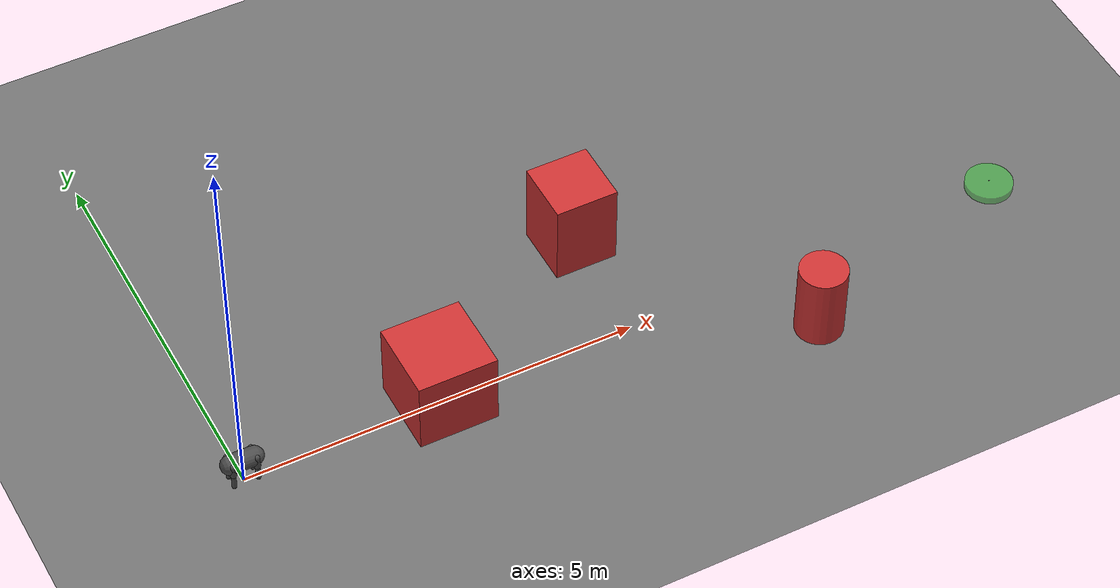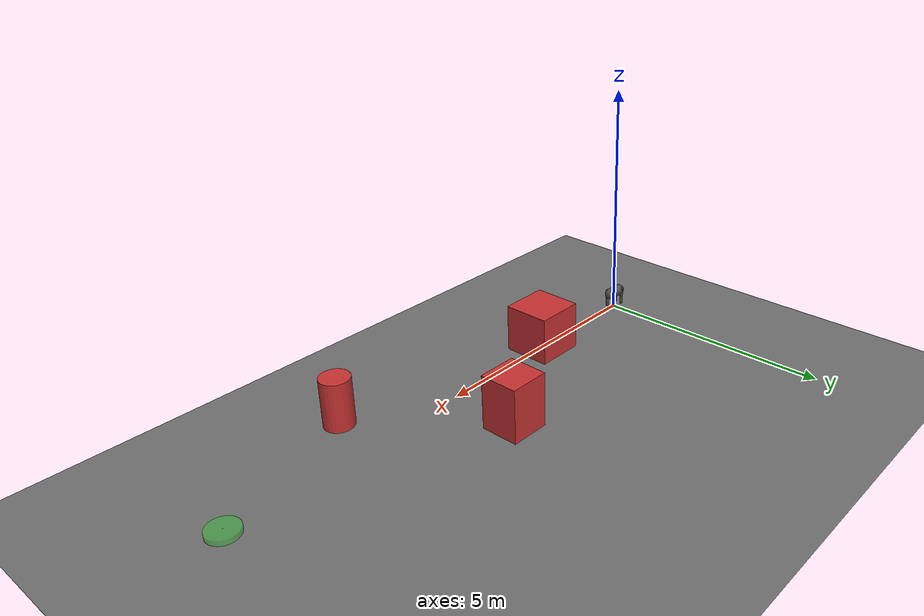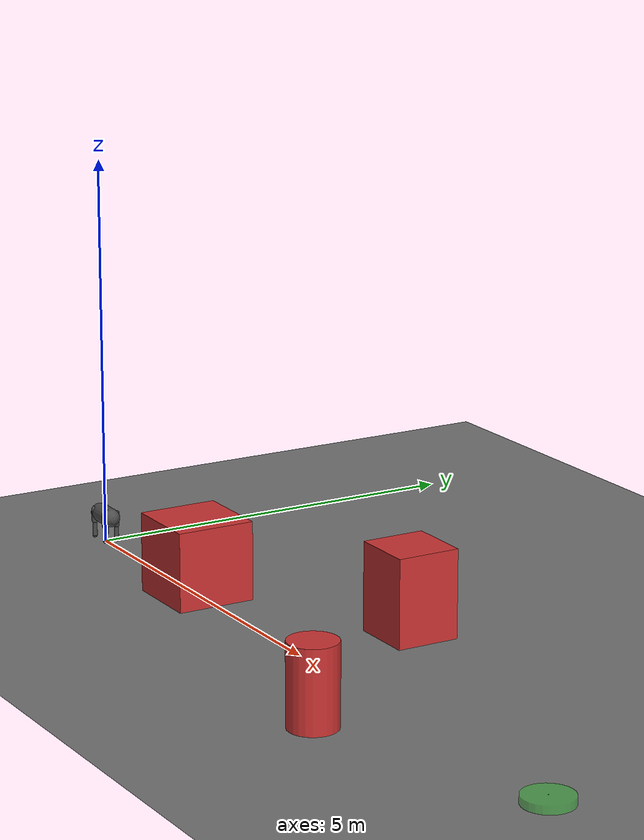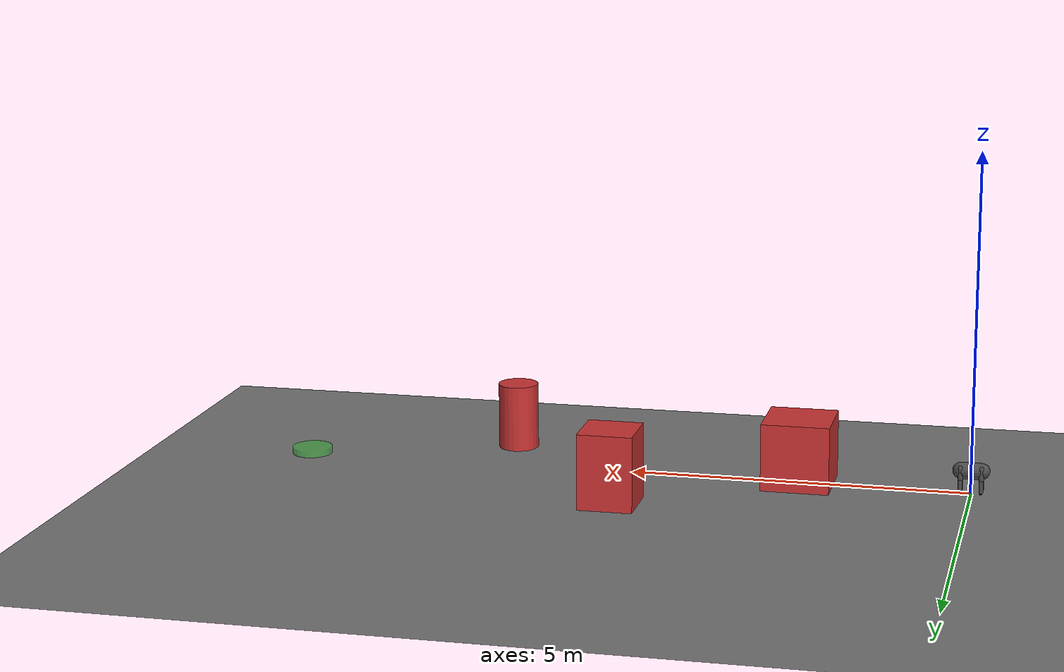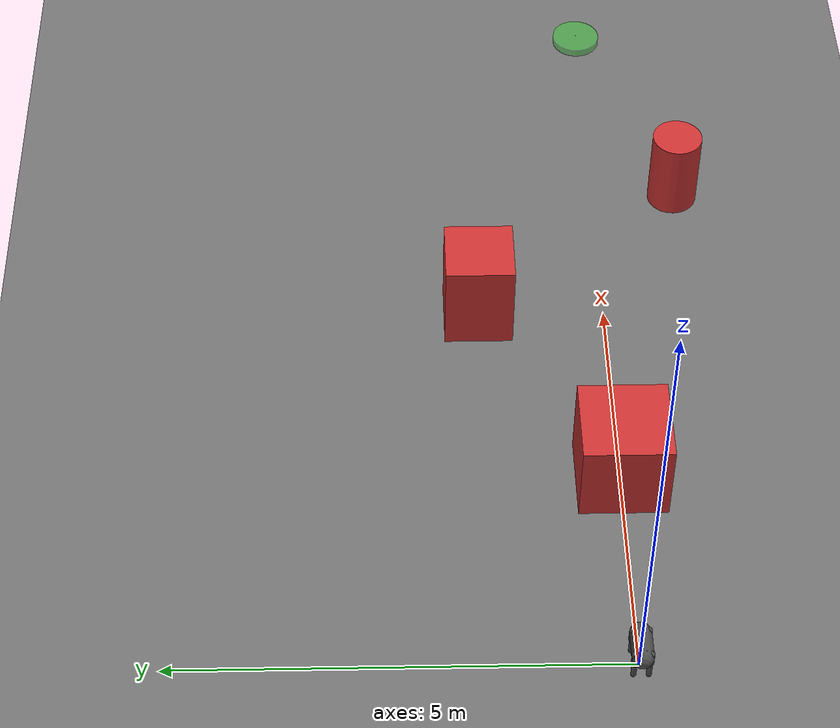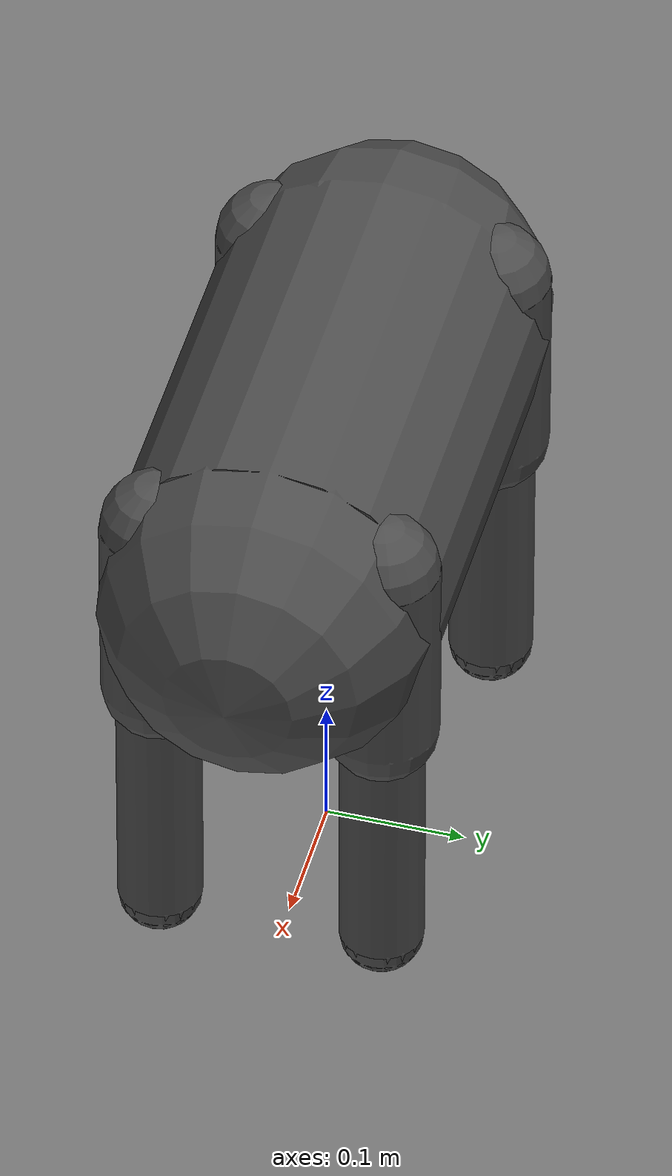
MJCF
<!--
  Deep Robotics M20 Pro Robot Obstacle Navigation Scene for MuJoCo.
  Robot type: quadruped
  Velocity limits: vx [0, 1.5], wz [-1.0, 1.0]
-->
<mujoco model="deep-robotics-m20-pro_obstacle_navigation">
  <compiler angle="radian" meshdir="." autolimits="true"/>
  <option timestep="0.001" gravity="0 0 -9.81" integrator="implicitfast">
    <flag sensornoise="disable"/>
  </option>
  <default>
    <joint armature="0.01" damping="0.1"/>
    <geom condim="4" friction="1.0 0.005 0.0001"/>
    <motor ctrllimited="true"/>
  </default>
  <asset>
    <texture name="grid" type="2d" builtin="checker" rgb1="0.4 0.4 0.4" rgb2="0.5 0.5 0.5" width="512" height="512"/>
    <material name="grid_mat" texture="grid" texrepeat="10 10" reflectance="0.1"/>
    <material name="obstacle_mat" rgba="0.8 0.2 0.2 1"/>
    <material name="goal_mat" rgba="0.2 0.8 0.2 0.5"/>
    <material name="robot_mat" rgba="0.3 0.3 0.3 1"/>
  </asset>
  <worldbody>
    <geom name="ground" type="plane" size="20 20 0.1" material="grid_mat"/>
    <light name="top_light" pos="0 0 10" dir="0 0 -1" diffuse="0.8 0.8 0.8"/>
    <light name="side_light" pos="5 5 5" dir="-1 -1 -1" diffuse="0.4 0.4 0.4"/>
    <body name="torso" pos="0 0 0.40">
      <inertial mass="18.0" pos="0 0 0" diaginertia="0.5 0.5 0.5"/>
      <geom name="torso_geom" type="capsule" size="0.12" fromto="-0.15 0 -0.05 0.15 0 -0.05" material="robot_mat"/>
      <body name="fl_hip" pos="0.15 0.08 0">
        <inertial mass="1.5" pos="0 0 -0.1" diaginertia="0.02 0.02 0.02"/>
        <joint name="fl_hip_joint" type="hinge" axis="1 0 0" range="-0.5 0.5"/>
        <geom name="fl_upper" type="capsule" size="0.04" fromto="0 0 0 0 0 -0.15" material="robot_mat"/>
        <body name="fl_knee" pos="0 0 -0.15">
          <inertial mass="1.0" pos="0 0 -0.12" diaginertia="0.015 0.015 0.015"/>
          <joint name="fl_knee_joint" type="hinge" axis="0 1 0" range="-2.0 0"/>
          <geom name="fl_lower" type="capsule" size="0.03" fromto="0 0 0 0 0 -0.2" material="robot_mat"/>
          <body name="fl_foot" pos="0 0 -0.2">
            <inertial mass="0.3" pos="0 0 0" diaginertia="0.002 0.002 0.002"/>
            <geom name="fl_foot_geom" type="sphere" size="0.03" material="robot_mat"/>
            <site name="fl_foot_site" pos="0 0 0"/>
          </body>
        </body>
      </body>
      <body name="fr_hip" pos="0.15 -0.08 0">
        <inertial mass="1.5" pos="0 0 -0.1" diaginertia="0.02 0.02 0.02"/>
        <joint name="fr_hip_joint" type="hinge" axis="1 0 0" range="-0.5 0.5"/>
        <geom name="fr_upper" type="capsule" size="0.04" fromto="0 0 0 0 0 -0.15" material="robot_mat"/>
        <body name="fr_knee" pos="0 0 -0.15">
          <inertial mass="1.0" pos="0 0 -0.12" diaginertia="0.015 0.015 0.015"/>
          <joint name="fr_knee_joint" type="hinge" axis="0 1 0" range="-2.0 0"/>
          <geom name="fr_lower" type="capsule" size="0.03" fromto="0 0 0 0 0 -0.2" material="robot_mat"/>
          <body name="fr_foot" pos="0 0 -0.2">
            <inertial mass="0.3" pos="0 0 0" diaginertia="0.002 0.002 0.002"/>
            <geom name="fr_foot_geom" type="sphere" size="0.03" material="robot_mat"/>
            <site name="fr_foot_site" pos="0 0 0"/>
          </body>
        </body>
      </body>
      <body name="rl_hip" pos="-0.15 0.08 0">
        <inertial mass="1.5" pos="0 0 -0.1" diaginertia="0.02 0.02 0.02"/>
        <joint name="rl_hip_joint" type="hinge" axis="1 0 0" range="-0.5 0.5"/>
        <geom name="rl_upper" type="capsule" size="0.04" fromto="0 0 0 0 0 -0.15" material="robot_mat"/>
        <body name="rl_knee" pos="0 0 -0.15">
          <inertial mass="1.0" pos="0 0 -0.12" diaginertia="0.015 0.015 0.015"/>
          <joint name="rl_knee_joint" type="hinge" axis="0 1 0" range="-2.0 0"/>
          <geom name="rl_lower" type="capsule" size="0.03" fromto="0 0 0 0 0 -0.2" material="robot_mat"/>
          <body name="rl_foot" pos="0 0 -0.2">
            <inertial mass="0.3" pos="0 0 0" diaginertia="0.002 0.002 0.002"/>
            <geom name="rl_foot_geom" type="sphere" size="0.03" material="robot_mat"/>
            <site name="rl_foot_site" pos="0 0 0"/>
          </body>
        </body>
      </body>
      <body name="rr_hip" pos="-0.15 -0.08 0">
        <inertial mass="1.5" pos="0 0 -0.1" diaginertia="0.02 0.02 0.02"/>
        <joint name="rr_hip_joint" type="hinge" axis="1 0 0" range="-0.5 0.5"/>
        <geom name="rr_upper" type="capsule" size="0.04" fromto="0 0 0 0 0 -0.15" material="robot_mat"/>
        <body name="rr_knee" pos="0 0 -0.15">
          <inertial mass="1.0" pos="0 0 -0.12" diaginertia="0.015 0.015 0.015"/>
          <joint name="rr_knee_joint" type="hinge" axis="0 1 0" range="-2.0 0"/>
          <geom name="rr_lower" type="capsule" size="0.03" fromto="0 0 0 0 0 -0.2" material="robot_mat"/>
          <body name="rr_foot" pos="0 0 -0.2">
            <inertial mass="0.3" pos="0 0 0" diaginertia="0.002 0.002 0.002"/>
            <geom name="rr_foot_geom" type="sphere" size="0.03" material="robot_mat"/>
            <site name="rr_foot_site" pos="0 0 0"/>
          </body>
        </body>
      </body>
      <freejoint name="root"/>
    </body>
    <body name="obstacle_1" pos="2.5 0 0.5" mocap="true">
      <geom name="obs1_geom" type="box" size="0.5 0.5 0.5" material="obstacle_mat" contype="1" conaffinity="1"/>
    </body>
    <body name="obstacle_2" pos="5.0 1.5 0.5" mocap="true">
      <geom name="obs2_geom" type="box" size="0.4 0.4 0.6" material="obstacle_mat" contype="1" conaffinity="1"/>
    </body>
    <body name="obstacle_3" pos="7.0 -1.0 0.5" mocap="true">
      <geom name="obs3_geom" type="cylinder" size="0.3 0.5" material="obstacle_mat" contype="1" conaffinity="1"/>
    </body>
    <body name="goal" pos="10.0 0 0.05">
      <geom name="goal_geom" type="cylinder" size="0.3 0.05" material="goal_mat" contype="0" conaffinity="0"/>
      <site name="goal_site" pos="0 0 0.05"/>
    </body>
  </worldbody>
  <sensor>
    <framepos name="torso_pos" objtype="body" objname="torso"/>
    <framevel name="torso_vel" objtype="body" objname="torso"/>
    <touch name="fl_foot_touch" site="fl_foot_site"/>
    <touch name="fr_foot_touch" site="fr_foot_site"/>
    <touch name="rl_foot_touch" site="rl_foot_site"/>
    <touch name="rr_foot_touch" site="rr_foot_site"/>
    <framepos name="goal_pos" objtype="site" objname="goal_site"/>
  </sensor>
  <actuator>
    <motor name="root_x" joint="root" gear="1 0 0 0 0 0" ctrlrange="-100 100"/>
    <motor name="root_y" joint="root" gear="0 1 0 0 0 0" ctrlrange="-100 100"/>
    <motor name="root_yaw" joint="root" gear="0 0 0 0 0 1" ctrlrange="-50 50"/>
    <position name="fl_hip_act" joint="fl_hip_joint" kp="150" ctrlrange="-0.5 0.5"/>
    <position name="fl_knee_act" joint="fl_knee_joint" kp="150" ctrlrange="-2.0 0"/>
    <position name="fr_hip_act" joint="fr_hip_joint" kp="150" ctrlrange="-0.5 0.5"/>
    <position name="fr_knee_act" joint="fr_knee_joint" kp="150" ctrlrange="-2.0 0"/>
    <position name="rl_hip_act" joint="rl_hip_joint" kp="150" ctrlrange="-0.5 0.5"/>
    <position name="rl_knee_act" joint="rl_knee_joint" kp="150" ctrlrange="-2.0 0"/>
    <position name="rr_hip_act" joint="rr_hip_joint" kp="150" ctrlrange="-0.5 0.5"/>
    <position name="rr_knee_act" joint="rr_knee_joint" kp="150" ctrlrange="-2.0 0"/>
  </actuator>
</mujoco>
